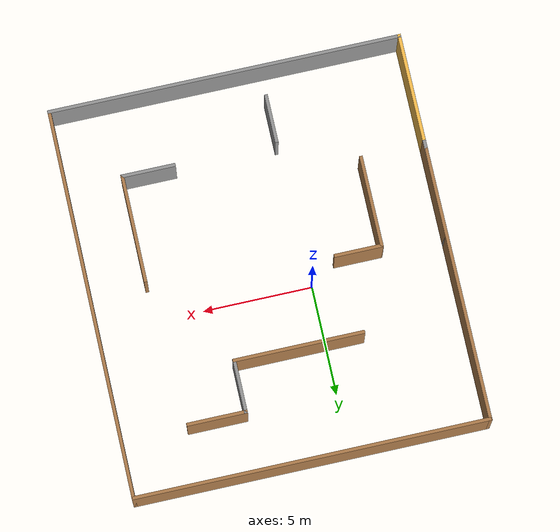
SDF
<?xml version='1.0'?>
<sdf version='1.7'>
  <model name='maptest'>
    <pose>1.79 -1.015 0 0 -0 0</pose>
    <link name='Wall_0'>
      <collision name='Wall_0_Collision'>
        <geometry>
          <box>
            <size>4.5 0.15 2.5</size>
          </box>
        </geometry>
        <pose>0 0 1.25 0 -0 0</pose>
      </collision>
      <visual name='Wall_0_Visual'>
        <pose>0 0 1.25 0 -0 0</pose>
        <geometry>
          <box>
            <size>4.5 0.15 2.5</size>
          </box>
        </geometry>
        <material>
          <script>
            <uri>file://media/materials/scripts/gazebo.material</uri>
            <name>Gazebo/Grey</name>
          </script>
          <ambient>1 1 1 1</ambient>
        </material>
        <meta>
          <layer>0</layer>
        </meta>
      </visual>
      <pose>-8.05 -1.75 0 0 -0 -1.5708</pose>
    </link>
    <link name='Wall_1'>
      <collision name='Wall_1_Collision'>
        <geometry>
          <box>
            <size>13 0.15 2.5</size>
          </box>
        </geometry>
        <pose>0 0 1.25 0 -0 0</pose>
      </collision>
      <visual name='Wall_1_Visual'>
        <pose>0 0 1.25 0 -0 0</pose>
        <geometry>
          <box>
            <size>13 0.15 2.5</size>
          </box>
        </geometry>
        <material>
          <script>
            <uri>file://media/materials/scripts/gazebo.material</uri>
            <name>Gazebo/Wood</name>
          </script>
          <ambient>1 0.764706 0.305882 1</ambient>
        </material>
        <meta>
          <layer>0</layer>
        </meta>
      </visual>
      <pose>-8.05 2.5 0 0 -0 1.5708</pose>
    </link>
    <link name='Wall_11'>
      <collision name='Wall_11_Collision'>
        <geometry>
          <box>
            <size>5 0.15 2.5</size>
          </box>
        </geometry>
        <pose>0 0 1.25 0 -0 0</pose>
      </collision>
      <visual name='Wall_11_Visual'>
        <pose>0 0 1.25 0 -0 0</pose>
        <geometry>
          <box>
            <size>5 0.15 2.5</size>
          </box>
        </geometry>
        <material>
          <script>
            <uri>file://media/materials/scripts/gazebo.material</uri>
            <name>Gazebo/Wood</name>
          </script>
          <ambient>1 1 1 1</ambient>
        </material>
        <meta>
          <layer>0</layer>
        </meta>
      </visual>
      <pose>5.47324 -2.89843 0 0 -0 -1.5708</pose>
    </link>
    <link name='Wall_16'>
      <collision name='Wall_16_Collision'>
        <geometry>
          <box>
            <size>2.5 0.15 2.5</size>
          </box>
        </geometry>
        <pose>0 0 1.25 0 -0 0</pose>
      </collision>
      <visual name='Wall_16_Visual'>
        <pose>0 0 1.25 0 -0 0</pose>
        <geometry>
          <box>
            <size>2.5 0.15 2.5</size>
          </box>
        </geometry>
        <material>
          <script>
            <uri>file://media/materials/scripts/gazebo.material</uri>
            <name>Gazebo/Grey</name>
          </script>
          <ambient>1 1 1 1</ambient>
        </material>
        <meta>
          <layer>0</layer>
        </meta>
      </visual>
      <pose>2.40132 5.0843 0 0 -0 1.5708</pose>
    </link>
    <link name='Wall_17'>
      <collision name='Wall_17_Collision'>
        <geometry>
          <box>
            <size>2.75 0.15 2.5</size>
          </box>
        </geometry>
        <pose>0 0 1.25 0 -0 0</pose>
      </collision>
      <visual name='Wall_17_Visual'>
        <pose>0 0 1.25 0 -0 0</pose>
        <geometry>
          <box>
            <size>2.75 0.15 2.5</size>
          </box>
        </geometry>
        <material>
          <script>
            <uri>file://media/materials/scripts/gazebo.material</uri>
            <name>Gazebo/Wood</name>
          </script>
          <ambient>1 1 1 1</ambient>
        </material>
        <meta>
          <layer>0</layer>
        </meta>
      </visual>
      <pose>3.70132 6.25931 0 0 -0 0</pose>
    </link>
    <link name='Wall_19'>
      <collision name='Wall_19_Collision'>
        <geometry>
          <box>
            <size>2.25 0.15 2.5</size>
          </box>
        </geometry>
        <pose>0 0 1.25 0 -0 0</pose>
      </collision>
      <visual name='Wall_19_Visual'>
        <pose>0 0 1.25 0 -0 0</pose>
        <geometry>
          <box>
            <size>2.25 0.15 2.5</size>
          </box>
        </geometry>
        <material>
          <script>
            <uri>file://media/materials/scripts/gazebo.material</uri>
            <name>Gazebo/Wood</name>
          </script>
          <ambient>1 1 1 1</ambient>
        </material>
        <meta>
          <layer>0</layer>
        </meta>
      </visual>
      <pose>-4.07354 0.28044 0 0 -0 0</pose>
    </link>
    <link name='Wall_2'>
      <collision name='Wall_2_Collision'>
        <geometry>
          <box>
            <size>16.25 0.15 2.5</size>
          </box>
        </geometry>
        <pose>0 0 1.25 0 -0 0</pose>
      </collision>
      <visual name='Wall_2_Visual'>
        <pose>0 0 1.25 0 -0 0</pose>
        <geometry>
          <box>
            <size>16.25 0.15 2.5</size>
          </box>
        </geometry>
        <material>
          <script>
            <uri>file://media/materials/scripts/gazebo.material</uri>
            <name>Gazebo/Wood</name>
          </script>
          <ambient>1 1 1 1</ambient>
        </material>
        <meta>
          <layer>0</layer>
        </meta>
      </visual>
      <pose>0 8.925 0 0 -0 0</pose>
    </link>
    <link name='Wall_21'>
      <collision name='Wall_21_Collision'>
        <geometry>
          <box>
            <size>2.5 0.15 2.5</size>
          </box>
        </geometry>
        <pose>0 0 1.25 0 -0 0</pose>
      </collision>
      <visual name='Wall_21_Visual'>
        <pose>0 0 1.25 0 -0 0</pose>
        <geometry>
          <box>
            <size>2.5 0.15 2.5</size>
          </box>
        </geometry>
        <material>
          <script>
            <uri>file://media/materials/scripts/gazebo.material</uri>
            <name>Gazebo/Grey</name>
          </script>
          <ambient>1 1 1 1</ambient>
        </material>
        <meta>
          <layer>0</layer>
        </meta>
      </visual>
      <pose>4.29824 -5.32343 0 0 -0 3.14159</pose>
    </link>
    <link name='Wall_23'>
      <collision name='Wall_23_Collision'>
        <geometry>
          <box>
            <size>2.25 0.15 2.5</size>
          </box>
        </geometry>
        <pose>0 0 1.25 0 -0 0</pose>
      </collision>
      <visual name='Wall_23_Visual'>
        <pose>0 0 1.25 0 -0 0</pose>
        <geometry>
          <box>
            <size>2.25 0.15 2.5</size>
          </box>
        </geometry>
        <material>
          <script>
            <uri>file://media/materials/scripts/gazebo.material</uri>
            <name>Gazebo/Grey</name>
          </script>
          <ambient>1 1 1 1</ambient>
        </material>
        <meta>
          <layer>0</layer>
        </meta>
      </visual>
      <pose>-1.59754 -6.45581 0 0 -0 -1.5708</pose>
    </link>
    <link name='Wall_3'>
      <collision name='Wall_3_Collision'>
        <geometry>
          <box>
            <size>18 0.15 2.5</size>
          </box>
        </geometry>
        <pose>0 0 1.25 0 -0 0</pose>
      </collision>
      <visual name='Wall_3_Visual'>
        <pose>0 0 1.25 0 -0 0</pose>
        <geometry>
          <box>
            <size>18 0.15 2.5</size>
          </box>
        </geometry>
        <material>
          <script>
            <uri>file://media/materials/scripts/gazebo.material</uri>
            <name>Gazebo/Wood</name>
          </script>
          <ambient>1 1 1 1</ambient>
        </material>
        <meta>
          <layer>0</layer>
        </meta>
      </visual>
      <pose>8.05 0 0 0 -0 -1.5708</pose>
    </link>
    <link name='Wall_4'>
      <collision name='Wall_4_Collision'>
        <geometry>
          <box>
            <size>16.25 0.15 2.5</size>
          </box>
        </geometry>
        <pose>0 0 1.25 0 -0 0</pose>
      </collision>
      <visual name='Wall_4_Visual'>
        <pose>0 0 1.25 0 -0 0</pose>
        <geometry>
          <box>
            <size>16.25 0.15 2.5</size>
          </box>
        </geometry>
        <material>
          <script>
            <uri>file://media/materials/scripts/gazebo.material</uri>
            <name>Gazebo/Grey</name>
          </script>
          <ambient>1 1 1 1</ambient>
        </material>
        <meta>
          <layer>0</layer>
        </meta>
      </visual>
      <pose>0 -8.925 0 0 -0 3.14159</pose>
    </link>
    <link name='Wall_5'>
      <collision name='Wall_5_Collision'>
        <geometry>
          <box>
            <size>5.15 0.15 2.5</size>
          </box>
        </geometry>
        <pose>0 0 1.25 0 -0 0</pose>
      </collision>
      <visual name='Wall_5_Visual'>
        <pose>0 0 1.25 0 -0 0</pose>
        <geometry>
          <box>
            <size>5.15 0.15 2.5</size>
          </box>
        </geometry>
        <material>
          <script>
            <uri>file://media/materials/scripts/gazebo.material</uri>
            <name>Gazebo/Grey</name>
          </script>
          <ambient>1 0.764706 0.305882 1</ambient>
        </material>
        <meta>
          <layer>0</layer>
        </meta>
      </visual>
      <pose>-8.05 -6.425 0 0 -0 1.5708</pose>
    </link>
    <link name='Wall_7'>
      <collision name='Wall_7_Collision'>
        <geometry>
          <box>
            <size>6 0.15 2.5</size>
          </box>
        </geometry>
        <pose>0 0 1.25 0 -0 0</pose>
      </collision>
      <visual name='Wall_7_Visual'>
        <pose>0 0 1.25 0 -0 0</pose>
        <geometry>
          <box>
            <size>6 0.15 2.5</size>
          </box>
        </geometry>
        <material>
          <script>
            <uri>file://media/materials/scripts/gazebo.material</uri>
            <name>Gazebo/Wood</name>
          </script>
          <ambient>1 1 1 1</ambient>
        </material>
        <meta>
          <layer>0</layer>
        </meta>
      </visual>
      <pose>-0.523682 3.9093 0 0 -0 0</pose>
    </link>
    <link name='Wall_9'>
      <collision name='Wall_9_Collision'>
        <geometry>
          <box>
            <size>4.25 0.15 2.5</size>
          </box>
        </geometry>
        <pose>0 0 1.25 0 -0 0</pose>
      </collision>
      <visual name='Wall_9_Visual'>
        <pose>0 0 1.25 0 -0 0</pose>
        <geometry>
          <box>
            <size>4.25 0.15 2.5</size>
          </box>
        </geometry>
        <material>
          <script>
            <uri>file://media/materials/scripts/gazebo.material</uri>
            <name>Gazebo/Wood</name>
          </script>
          <ambient>1 1 1 1</ambient>
        </material>
        <meta>
          <layer>0</layer>
        </meta>
      </visual>
      <pose>-5.12354 -1.76956 0 0 -0 -1.5708</pose>
    </link>
    <static>1</static>
  </model>
</sdf>
